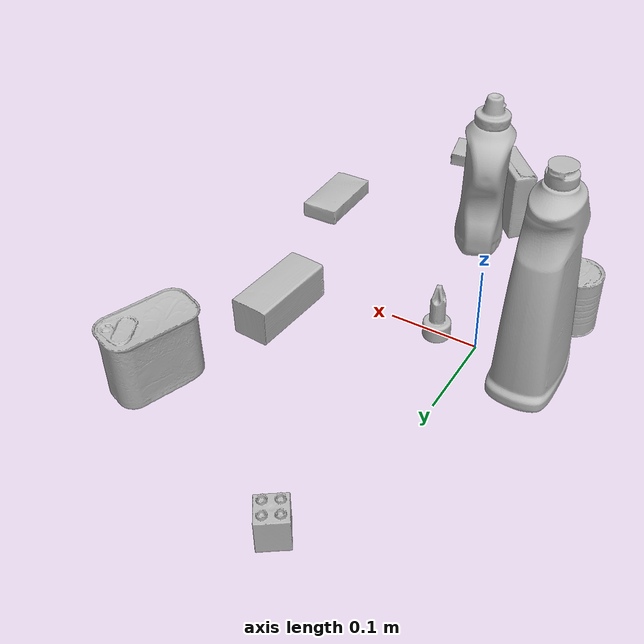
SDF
<sdf version="1.4">
  <world name="default">
    <light name="light1" type="point">
      <pose>0 0 1 0 0 0</pose>
      <diffuse>3 3 3 1</diffuse>
      <specular>3 3 3 1</specular>
    </light>
    <light name="light2" type="point">
      <pose>0 0.5 2 0 0 0</pose>
      <diffuse>1 1 1 1</diffuse>
      <specular>1 1 1 1</specular>
    </light>
    <light name="light3" type="point">
      <pose>0 0.5 2 0 0 0</pose>
      <diffuse>3 3 3 1</diffuse>
      <specular>3 3 3 1</specular>
    </light>
    <scene>
      <ambient>0.7 0.7 0.7</ambient>
    </scene>
    <model name="bottle1">
      <link name="link_bottle1">
        <collision name="default">
          <geometry>
            <mesh>
              <uri>model://bleach_cleanser/collision_meshes/collision.obj</uri>
              <scale>1.0 1.0 1.0</scale>
            </mesh>
          </geometry>
          <surface>
            <friction>
              <ode>
                <mu>0.5</mu>
                <mu2>0.5</mu2>
              </ode>
            </friction>
          <contact>
        <ode>
            <max_vel>0</max_vel>
            <min_depth>0.0001</min_depth>
            <kp>1e8</kp>
        </ode>
    </contact></surface>
        </collision>
        <visual name="default">
          <geometry>
            <mesh>
              <uri>model://bleach_cleanser/visual_meshes/visual.dae</uri>
              <scale>1.0 1.0 1.0</scale>
            </mesh>
          </geometry>
        </visual>
        <inertial>
          <mass>1.578364610671997</mass>
          <pose>0.00012193182919872925 0.003783882362768054 -0.024421613663434982 -0.07381669869228723 0.000420116582496686 -0.006875050642452563</pose>
          <inertia>
            <ixx>0.00768213</ixx>
            <iyy>0.0071586203</iyy>
            <izz>0.0013134446</izz>
            <ixy>0</ixy>
            <ixz>0</ixz>
            <iyz>0</iyz>
          </inertia>
        </inertial>
      </link>
      <pose>-0.06598329544067383 0.01555325835943222 0.12578414380550385 -0.00020006500111776563 1.5955109536061596e-05 3.1414120936960357</pose>
    </model>
    <model name="bottle2">
      <link name="link_bottle2">
        <collision name="default">
          <geometry>
            <mesh>
              <uri>model://mustard_bottle/collision_meshes/collision.obj</uri>
              <scale>1.0 1.0 1.0</scale>
            </mesh>
          </geometry>
          <surface>
            <friction>
              <ode>
                <mu>0.5</mu>
                <mu2>0.5</mu2>
              </ode>
            </friction>
          <contact>
        <ode>
            <max_vel>0</max_vel>
            <min_depth>0.0001</min_depth>
            <kp>1e8</kp>
        </ode>
    </contact></surface>
        </collision>
        <visual name="default">
          <geometry>
            <mesh>
              <uri>model://mustard_bottle/visual_meshes/visual.dae</uri>
              <scale>1.0 1.0 1.0</scale>
            </mesh>
          </geometry>
        </visual>
        <inertial>
          <mass>0.5896905064582825</mass>
          <pose>0.000503245391882956 -0.00015647403779439628 -0.0174757931381464 0.00041823284967905286 0.0009465779461724547 0.024853724225743102</pose>
          <inertia>
            <ixx>0.00163749</ixx>
            <iyy>0.0014367587</iyy>
            <izz>0.00043156123</izz>
            <ixy>0</ixy>
            <ixz>0</ixz>
            <iyz>0</iyz>
          </inertia>
        </inertial>
      </link>
      <pose>0.08023004978895187 -0.18464726209640503 0.09568724781274796 -0.001497686669463889 0.025964032479720737 -2.7708923470893208</pose>
    </model>
    <model name="toy1">
      <link name="link_toy1">
        <collision name="default">
          <geometry>
            <mesh>
              <uri>model://b_lego_duplo/collision_meshes/collision.obj</uri>
              <scale>1.0 1.0 1.0</scale>
            </mesh>
          </geometry>
          <surface>
            <friction>
              <ode>
                <mu>0.5</mu>
                <mu2>0.5</mu2>
              </ode>
            </friction>
          <contact>
        <ode>
            <max_vel>0</max_vel>
            <min_depth>0.0001</min_depth>
            <kp>1e8</kp>
        </ode>
    </contact></surface>
        </collision>
        <visual name="default">
          <geometry>
            <mesh>
              <uri>model://b_lego_duplo/visual_meshes/visual.dae</uri>
              <scale>1.0 1.0 1.0</scale>
            </mesh>
          </geometry>
        </visual>
        <inertial>
          <mass>0.04927889630198479</mass>
          <pose>-0.00011053016351070255 -9.152428901870735e-06 0.0019294293597340584 -0.03749545918935276 -0.026353596882306905 0.4519115393215097</pose>
          <inertia>
            <ixx>1.0085294e-05</ixx>
            <iyy>1.015309e-05</iyy>
            <izz>8.985672e-06</izz>
            <ixy>0</ixy>
            <ixz>0</ixz>
            <iyz>0</iyz>
          </inertia>
        </inertial>
      </link>
      <pose>0.04865586385130882 0.30638161301612854 0.02181500382721424 4.828928414497679e-07 6.573737106689189e-07 0.6066453918821565</pose>
    </model>
    <model name="toy2">
      <link name="link_toy2">
        <collision name="default">
          <geometry>
            <mesh>
              <uri>model://d_toy_airplane/collision_meshes/collision.obj</uri>
              <scale>1.0 1.0 1.0</scale>
            </mesh>
          </geometry>
          <surface>
            <friction>
              <ode>
                <mu>0.5</mu>
                <mu2>0.5</mu2>
              </ode>
            </friction>
          <contact>
        <ode>
            <max_vel>0</max_vel>
            <min_depth>0.0001</min_depth>
            <kp>1e8</kp>
        </ode>
    </contact></surface>
        </collision>
        <visual name="default">
          <geometry>
            <mesh>
              <uri>model://d_toy_airplane/visual_meshes/visual.dae</uri>
              <scale>1.0 1.0 1.0</scale>
            </mesh>
          </geometry>
        </visual>
        <inertial>
          <mass>0.023543989285826683</mass>
          <pose>9.41029647947289e-05 -5.8093268307857215e-05 -0.011728093028068542 0.0002670074791080515 0.004678977428991067 0.5194709842729006</pose>
          <inertia>
            <ixx>7.058034e-06</ixx>
            <iyy>7.063356e-06</iyy>
            <izz>2.1308651e-06</izz>
            <ixy>0</ixy>
            <ixz>0</ixz>
            <iyz>0</iyz>
          </inertia>
        </inertial>
      </link>
      <pose>0.044977977871894836 0.0024644338991492987 0.03333926945924759 0.0001555443175751807 -5.976291753575329e-05 0.2511107356091408</pose>
    </model>
    <model name="can1">
      <link name="link_can1">
        <collision name="default">
          <geometry>
            <mesh>
              <uri>model://master_chef_can/collision_meshes/collision.obj</uri>
              <scale>0.5 0.5 0.5</scale>
            </mesh>
          </geometry>
          <surface>
            <friction>
              <ode>
                <mu>0.5</mu>
                <mu2>0.5</mu2>
              </ode>
            </friction>
          <contact>
        <ode>
            <max_vel>0</max_vel>
            <min_depth>0.0001</min_depth>
            <kp>1e8</kp>
        </ode>
    </contact></surface>
        </collision>
        <visual name="default">
          <geometry>
            <mesh>
              <uri>model://master_chef_can/visual_meshes/visual.dae</uri>
              <scale>0.5 0.5 0.5</scale>
            </mesh>
          </geometry>
        </visual>
        <inertial>
          <mass>0.13489052653312683</mass>
          <pose>-4.6619643399026245e-05 1.392684936263322e-07 -5.080000119050965e-05 -0.0017995055981966167 0.0006479432683086387 -0.6102521024359563</pose>
          <inertia>
            <ixx>7.9171594e-05</ixx>
            <iyy>7.85889e-05</iyy>
            <izz>4.3748354e-05</izz>
            <ixy>0</ixy>
            <ixz>0</ixz>
            <iyz>0</iyz>
          </inertia>
        </inertial>
      </link>
      <pose>-0.07380588352680206 -0.09007034450769424 0.035301998257637024 -1.150019666813136e-06 -7.493817458316069e-07 1.962980770492185</pose>
    </model>
    <model name="can2">
      <link name="link_can2">
        <collision name="default">
          <geometry>
            <mesh>
              <uri>model://potted_meat_can/collision_meshes/collision.obj</uri>
              <scale>1.0 1.0 1.0</scale>
            </mesh>
          </geometry>
          <surface>
            <friction>
              <ode>
                <mu>0.5</mu>
                <mu2>0.5</mu2>
              </ode>
            </friction>
          <contact>
        <ode>
            <max_vel>0</max_vel>
            <min_depth>0.0001</min_depth>
            <kp>1e8</kp>
        </ode>
    </contact></surface>
        </collision>
        <visual name="default">
          <geometry>
            <mesh>
              <uri>model://potted_meat_can/visual_meshes/visual.dae</uri>
              <scale>1.0 1.0 1.0</scale>
            </mesh>
          </geometry>
        </visual>
        <inertial>
          <mass>0.4512253701686859</mass>
          <pose>0.00022888150124344975 -5.9891150158364326e-05 -0.0006367433816194534 -0.028093371406289817 -0.007232609295346345 0.015406271951796056</pose>
          <inertia>
            <ixx>0.00058045425</ixx>
            <iyy>0.00035267006</iyy>
            <izz>0.00042216998</izz>
            <ixy>0</ixy>
            <ixz>0</ixz>
            <iyz>0</iyz>
          </inertia>
        </inertial>
      </link>
      <pose>0.2590715289115906 0.20814499258995056 0.04212801903486252 1.935836487426634e-09 -6.220144354532654e-07 2.773772261385231</pose>
    </model>
    <model name="box1">
      <link name="link_box1">
        <collision name="default">
          <geometry>
            <mesh>
              <uri>model://pudding_box/collision_meshes/collision.obj</uri>
              <scale>0.5 0.5 0.5</scale>
            </mesh>
          </geometry>
          <surface>
            <friction>
              <ode>
                <mu>0.5</mu>
                <mu2>0.5</mu2>
              </ode>
            </friction>
          <contact>
        <ode>
            <max_vel>0</max_vel>
            <min_depth>0.0001</min_depth>
            <kp>1e8</kp>
        </ode>
    </contact></surface>
        </collision>
        <visual name="default">
          <geometry>
            <mesh>
              <uri>model://pudding_box/visual_meshes/visual.dae</uri>
              <scale>0.5 0.5 0.5</scale>
            </mesh>
          </geometry>
        </visual>
        <inertial>
          <mass>0.02510015107691288</mass>
          <pose>0.00024474109522998333 0.0004033942532259971 -0.0002594413817860186 0.005213101332996491 -0.0066037987089797995 0.020079823298230236</pose>
          <inertia>
            <ixx>7.093607e-06</ixx>
            <iyy>4.7726294e-06</iyy>
            <izz>1.04755645e-05</izz>
            <ixy>0</ixy>
            <ixz>0</ixz>
            <iyz>0</iyz>
          </inertia>
        </inertial>
      </link>
      <pose>0.16100066900253296 -0.34353575110435486 0.009862901642918587 0.02234855870577628 -0.011391660128280533 -1.367911962189911</pose>
    </model>
    <model name="box2">
      <link name="link_box2">
        <collision name="default">
          <geometry>
            <mesh>
              <uri>model://gelatin_box/collision_meshes/collision.obj</uri>
              <scale>1.0 1.0 1.0</scale>
            </mesh>
          </geometry>
          <surface>
            <friction>
              <ode>
                <mu>0.5</mu>
                <mu2>0.5</mu2>
              </ode>
            </friction>
          <contact>
        <ode>
            <max_vel>0</max_vel>
            <min_depth>0.0001</min_depth>
            <kp>1e8</kp>
        </ode>
    </contact></surface>
        </collision>
        <visual name="default">
          <geometry>
            <mesh>
              <uri>model://gelatin_box/visual_meshes/visual.dae</uri>
              <scale>1.0 1.0 1.0</scale>
            </mesh>
          </geometry>
        </visual>
        <inertial>
          <mass>0.2452477514743805</mass>
          <pose>0.000431961816502735 0.00011156871187267825 -0.0003640321083366871 -0.0010503720803081407 -0.004755818225601415 0.01644055574590794</pose>
          <inertia>
            <ixx>0.0001731249</ixx>
            <iyy>0.0001236622</iyy>
            <izz>0.00026353472</izz>
            <ixy>0</ixy>
            <ixz>0</ixz>
            <iyz>0</iyz>
          </inertia>
        </inertial>
      </link>
      <pose>0.06054824963212013 -0.23255129158496857 0.044827766716480255 -1.5709411156456408 -0.00017843151424237966 2.3270065030771248</pose>
    </model>
    <model name="box3">
      <link name="link_box3">
        <collision name="default">
          <geometry>
            <mesh>
              <uri>model://sugar_box/collision_meshes/collision.obj</uri>
              <scale>0.5 0.5 0.5</scale>
            </mesh>
          </geometry>
          <surface>
            <friction>
              <ode>
                <mu>0.5</mu>
                <mu2>0.5</mu2>
              </ode>
            </friction>
          <contact>
        <ode>
            <max_vel>0</max_vel>
            <min_depth>0.0001</min_depth>
            <kp>1e8</kp>
        </ode>
    </contact></surface>
        </collision>
        <visual name="default">
          <geometry>
            <mesh>
              <uri>model://sugar_box/visual_meshes/visual.dae</uri>
              <scale>0.5 0.5 0.5</scale>
            </mesh>
          </geometry>
        </visual>
        <inertial>
          <mass>0.12277840822935104</mass>
          <pose>0.0005171863595023751 1.9245549992774613e-05 -0.00018182402709499002 -0.0004046257474220826 0.0010506635214397083 0.0026153787892127145</pose>
          <inertia>
            <ixx>2.5574656e-05</ixx>
            <iyy>8.2662555e-05</iyy>
            <izz>9.895694e-05</izz>
            <ixy>0</ixy>
            <ixz>0</ixz>
            <iyz>0</iyz>
          </inertia>
        </inertial>
      </link>
      <pose>0.26717641949653625 -0.15562190115451813 0.011399312876164913 0.0007751873900763989 -0.02343257544352005 1.583057237078857</pose>
    </model>
    <model name="box4">
      <link name="link_box4">
        <collision name="default">
          <geometry>
            <mesh>
              <uri>model://wood_block/collision_meshes/collision.obj</uri>
              <scale>0.5 0.5 0.5</scale>
            </mesh>
          </geometry>
          <surface>
            <friction>
              <ode>
                <mu>0.5</mu>
                <mu2>0.5</mu2>
              </ode>
            </friction>
          <contact>
        <ode>
            <max_vel>0</max_vel>
            <min_depth>0.0001</min_depth>
            <kp>1e8</kp>
        </ode>
    </contact></surface>
        </collision>
        <visual name="default">
          <geometry>
            <mesh>
              <uri>model://wood_block/visual_meshes/visual.dae</uri>
              <scale>0.5 0.5 0.5</scale>
            </mesh>
          </geometry>
        </visual>
        <inertial>
          <mass>0.2967980206012726</mass>
          <pose>-2.9066577553749084e-06 -0.00028540470520965755 0.00013204291462898254 -0.05220902064674581 -0.005192696668457315 -0.006861378272965977</pose>
          <inertia>
            <ixx>9.929016e-05</ixx>
            <iyy>0.00031365763</iyy>
            <izz>0.00031248436</izz>
            <ixy>0</ixy>
            <ixz>0</ixz>
            <iyz>0</iyz>
          </inertia>
        </inertial>
      </link>
      <pose>0.2097633183002472 0.05837826803326607 0.022629264742136 -0.005208569916778037 0.005718784000972646 -1.6500368341508054</pose>
    </model>
  <physics type="ode">
      <max_contacts>50</max_contacts>
      <ode>
        <solver>
          <type>quick</type>
          <iters>75</iters>
        </solver>
        <constraints>
          <contact_max_correcting_vel>0</contact_max_correcting_vel>
          <contact_surface_layer>0</contact_surface_layer>
        </constraints>
      </ode>
    </physics></world>
</sdf>
